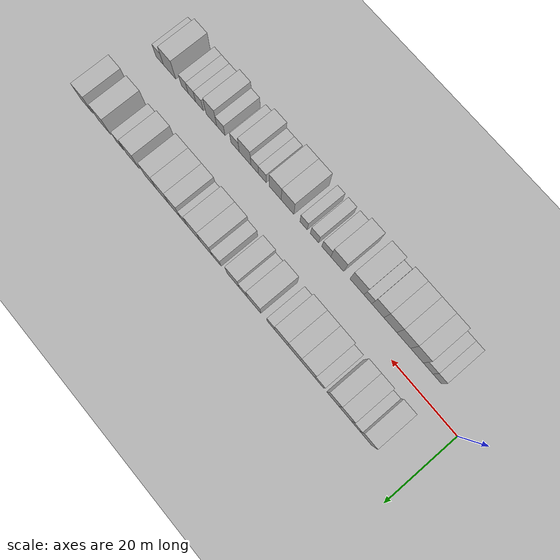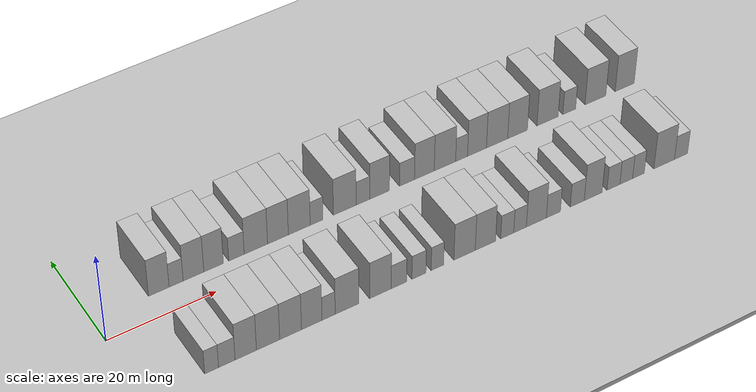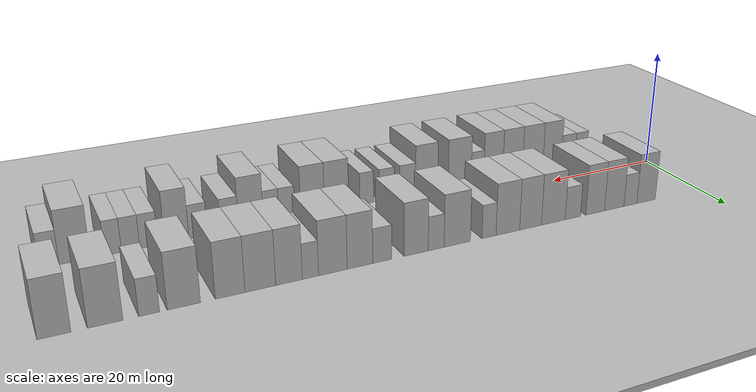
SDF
<sdf version="1.6">
 <world name="default">
  <include><name>ground_plane_1</name><uri>model://HANNAS_ground_plane</uri></include>
  <include>
   <name>ground_plane_2</name>
   <uri>model://HANNAS_ground_plane</uri>
   <pose>100 0 0  0 0 0</pose>
  </include>
  <model name="building_1">
   <static>1</static>
   <pose>11.8868 9.5000 0 0.000000 0.000000 1.570796</pose>
   <link name="link">
    <pose>0 0 4.50 0 0 0</pose>
    <collision name="collision"><geometry><box><size>10.0000 3.7736 9.0000</size></box></geometry></collision>
    <visual name="visual">
     <cast_shadows>0</cast_shadows>
     <geometry><box><size>10.0000 3.7736 9.0000</size></box></geometry>
     <material>
      <script>
       <uri>model://HANNAS_wall/materials/scripts</uri>
       <uri>model://HANNAS_wall/materials/textures</uri>
       <name>vrc/HANNAS_wall</name>
      </script>
     </material>
    </visual>
   </link>
  </model>
  <model name="building_2">
   <static>1</static>
   <pose>15.0620 9.5000 0 0.000000 0.000000 1.570796</pose>
   <link name="link">
    <pose>0 0 3.00 0 0 0</pose>
    <collision name="collision"><geometry><box><size>10.0000 2.5769 6.0000</size></box></geometry></collision>
    <visual name="visual">
     <cast_shadows>0</cast_shadows>
     <geometry><box><size>10.0000 2.5769 6.0000</size></box></geometry>
     <material>
      <script>
       <uri>model://HANNAS_wall/materials/scripts</uri>
       <uri>model://HANNAS_wall/materials/textures</uri>
       <name>vrc/HANNAS_wall</name>
      </script>
     </material>
    </visual>
   </link>
  </model>
  <model name="building_3">
   <static>1</static>
   <pose>18.2629 9.5000 0 0.000000 0.000000 1.570796</pose>
   <link name="link">
    <pose>0 0 4.50 0 0 0</pose>
    <collision name="collision"><geometry><box><size>10.0000 3.8249 9.0000</size></box></geometry></collision>
    <visual name="visual">
     <cast_shadows>0</cast_shadows>
     <geometry><box><size>10.0000 3.8249 9.0000</size></box></geometry>
     <material>
      <script>
       <uri>model://HANNAS_wall/materials/scripts</uri>
       <uri>model://HANNAS_wall/materials/textures</uri>
       <name>vrc/HANNAS_wall</name>
      </script>
     </material>
    </visual>
   </link>
  </model>
  <model name="building_4">
   <static>1</static>
   <pose>21.9910 9.5000 0 0.000000 0.000000 1.570796</pose>
   <link name="link">
    <pose>0 0 4.50 0 0 0</pose>
    <collision name="collision"><geometry><box><size>10.0000 3.6313 9.0000</size></box></geometry></collision>
    <visual name="visual">
     <cast_shadows>0</cast_shadows>
     <geometry><box><size>10.0000 3.6313 9.0000</size></box></geometry>
     <material>
      <script>
       <uri>model://HANNAS_wall/materials/scripts</uri>
       <uri>model://HANNAS_wall/materials/textures</uri>
       <name>vrc/HANNAS_wall</name>
      </script>
     </material>
    </visual>
   </link>
  </model>
  <model name="building_5">
   <static>1</static>
   <pose>26.2558 9.5000 0 0.000000 0.000000 1.570796</pose>
   <link name="link">
    <pose>0 0 3.00 0 0 0</pose>
    <collision name="collision"><geometry><box><size>10.0000 2.8984 6.0000</size></box></geometry></collision>
    <visual name="visual">
     <cast_shadows>0</cast_shadows>
     <geometry><box><size>10.0000 2.8984 6.0000</size></box></geometry>
     <material>
      <script>
       <uri>model://HANNAS_wall/materials/scripts</uri>
       <uri>model://HANNAS_wall/materials/textures</uri>
       <name>vrc/HANNAS_wall</name>
      </script>
     </material>
    </visual>
   </link>
  </model>
  <model name="building_6">
   <static>1</static>
   <pose>29.9096 9.5000 0 0.000000 0.000000 1.570796</pose>
   <link name="link">
    <pose>0 0 4.50 0 0 0</pose>
    <collision name="collision"><geometry><box><size>10.0000 4.4091 9.0000</size></box></geometry></collision>
    <visual name="visual">
     <cast_shadows>0</cast_shadows>
     <geometry><box><size>10.0000 4.4091 9.0000</size></box></geometry>
     <material>
      <script>
       <uri>model://HANNAS_wall/materials/scripts</uri>
       <uri>model://HANNAS_wall/materials/textures</uri>
       <name>vrc/HANNAS_wall</name>
      </script>
     </material>
    </visual>
   </link>
  </model>
  <model name="building_7">
   <static>1</static>
   <pose>34.0918 9.5000 0 0.000000 0.000000 1.570796</pose>
   <link name="link">
    <pose>0 0 4.50 0 0 0</pose>
    <collision name="collision"><geometry><box><size>10.0000 3.9553 9.0000</size></box></geometry></collision>
    <visual name="visual">
     <cast_shadows>0</cast_shadows>
     <geometry><box><size>10.0000 3.9553 9.0000</size></box></geometry>
     <material>
      <script>
       <uri>model://HANNAS_wall/materials/scripts</uri>
       <uri>model://HANNAS_wall/materials/textures</uri>
       <name>vrc/HANNAS_wall</name>
      </script>
     </material>
    </visual>
   </link>
  </model>
  <model name="building_8">
   <static>1</static>
   <pose>38.1682 9.5000 0 0.000000 0.000000 1.570796</pose>
   <link name="link">
    <pose>0 0 4.50 0 0 0</pose>
    <collision name="collision"><geometry><box><size>10.0000 4.1977 9.0000</size></box></geometry></collision>
    <visual name="visual">
     <cast_shadows>0</cast_shadows>
     <geometry><box><size>10.0000 4.1977 9.0000</size></box></geometry>
     <material>
      <script>
       <uri>model://HANNAS_wall/materials/scripts</uri>
       <uri>model://HANNAS_wall/materials/textures</uri>
       <name>vrc/HANNAS_wall</name>
      </script>
     </material>
    </visual>
   </link>
  </model>
  <model name="building_9">
   <static>1</static>
   <pose>41.4952 9.5000 0 0.000000 0.000000 1.570796</pose>
   <link name="link">
    <pose>0 0 3.00 0 0 0</pose>
    <collision name="collision"><geometry><box><size>10.0000 2.4562 6.0000</size></box></geometry></collision>
    <visual name="visual">
     <cast_shadows>0</cast_shadows>
     <geometry><box><size>10.0000 2.4562 6.0000</size></box></geometry>
     <material>
      <script>
       <uri>model://HANNAS_wall/materials/scripts</uri>
       <uri>model://HANNAS_wall/materials/textures</uri>
       <name>vrc/HANNAS_wall</name>
      </script>
     </material>
    </visual>
   </link>
  </model>
  <model name="building_10">
   <static>1</static>
   <pose>46.9488 9.5000 0 0.000000 0.000000 1.570796</pose>
   <link name="link">
    <pose>0 0 4.50 0 0 0</pose>
    <collision name="collision"><geometry><box><size>10.0000 4.4510 9.0000</size></box></geometry></collision>
    <visual name="visual">
     <cast_shadows>0</cast_shadows>
     <geometry><box><size>10.0000 4.4510 9.0000</size></box></geometry>
     <material>
      <script>
       <uri>model://HANNAS_wall/materials/scripts</uri>
       <uri>model://HANNAS_wall/materials/textures</uri>
       <name>vrc/HANNAS_wall</name>
      </script>
     </material>
    </visual>
   </link>
  </model>
  <model name="building_11">
   <static>1</static>
   <pose>50.4869 9.5000 0 0.000000 0.000000 1.570796</pose>
   <link name="link">
    <pose>0 0 3.00 0 0 0</pose>
    <collision name="collision"><geometry><box><size>10.0000 2.6252 6.0000</size></box></geometry></collision>
    <visual name="visual">
     <cast_shadows>0</cast_shadows>
     <geometry><box><size>10.0000 2.6252 6.0000</size></box></geometry>
     <material>
      <script>
       <uri>model://HANNAS_wall/materials/scripts</uri>
       <uri>model://HANNAS_wall/materials/textures</uri>
       <name>vrc/HANNAS_wall</name>
      </script>
     </material>
    </visual>
   </link>
  </model>
  <model name="building_12">
   <static>1</static>
   <pose>53.7622 9.5000 0 0.000000 0.000000 1.570796</pose>
   <link name="link">
    <pose>0 0 4.50 0 0 0</pose>
    <collision name="collision"><geometry><box><size>10.0000 3.9254 9.0000</size></box></geometry></collision>
    <visual name="visual">
     <cast_shadows>0</cast_shadows>
     <geometry><box><size>10.0000 3.9254 9.0000</size></box></geometry>
     <material>
      <script>
       <uri>model://HANNAS_wall/materials/scripts</uri>
       <uri>model://HANNAS_wall/materials/textures</uri>
       <name>vrc/HANNAS_wall</name>
      </script>
     </material>
    </visual>
   </link>
  </model>
  <model name="building_13">
   <static>1</static>
   <pose>59.2164 9.5000 0 0.000000 0.000000 1.570796</pose>
   <link name="link">
    <pose>0 0 3.00 0 0 0</pose>
    <collision name="collision"><geometry><box><size>10.0000 2.9829 6.0000</size></box></geometry></collision>
    <visual name="visual">
     <cast_shadows>0</cast_shadows>
     <geometry><box><size>10.0000 2.9829 6.0000</size></box></geometry>
     <material>
      <script>
       <uri>model://HANNAS_wall/materials/scripts</uri>
       <uri>model://HANNAS_wall/materials/textures</uri>
       <name>vrc/HANNAS_wall</name>
      </script>
     </material>
    </visual>
   </link>
  </model>
  <model name="building_14">
   <static>1</static>
   <pose>62.6915 9.5000 0 0.000000 0.000000 1.570796</pose>
   <link name="link">
    <pose>0 0 4.50 0 0 0</pose>
    <collision name="collision"><geometry><box><size>10.0000 3.9674 9.0000</size></box></geometry></collision>
    <visual name="visual">
     <cast_shadows>0</cast_shadows>
     <geometry><box><size>10.0000 3.9674 9.0000</size></box></geometry>
     <material>
      <script>
       <uri>model://HANNAS_wall/materials/scripts</uri>
       <uri>model://HANNAS_wall/materials/textures</uri>
       <name>vrc/HANNAS_wall</name>
      </script>
     </material>
    </visual>
   </link>
  </model>
  <model name="building_15">
   <static>1</static>
   <pose>66.8374 9.5000 0 0.000000 0.000000 1.570796</pose>
   <link name="link">
    <pose>0 0 4.50 0 0 0</pose>
    <collision name="collision"><geometry><box><size>10.0000 4.3243 9.0000</size></box></geometry></collision>
    <visual name="visual">
     <cast_shadows>0</cast_shadows>
     <geometry><box><size>10.0000 4.3243 9.0000</size></box></geometry>
     <material>
      <script>
       <uri>model://HANNAS_wall/materials/scripts</uri>
       <uri>model://HANNAS_wall/materials/textures</uri>
       <name>vrc/HANNAS_wall</name>
      </script>
     </material>
    </visual>
   </link>
  </model>
  <model name="building_16">
   <static>1</static>
   <pose>70.2006 9.5000 0 0.000000 0.000000 1.570796</pose>
   <link name="link">
    <pose>0 0 3.00 0 0 0</pose>
    <collision name="collision"><geometry><box><size>10.0000 2.4023 6.0000</size></box></geometry></collision>
    <visual name="visual">
     <cast_shadows>0</cast_shadows>
     <geometry><box><size>10.0000 2.4023 6.0000</size></box></geometry>
     <material>
      <script>
       <uri>model://HANNAS_wall/materials/scripts</uri>
       <uri>model://HANNAS_wall/materials/textures</uri>
       <name>vrc/HANNAS_wall</name>
      </script>
     </material>
    </visual>
   </link>
  </model>
  <model name="building_17">
   <static>1</static>
   <pose>73.3415 9.5000 0 0.000000 0.000000 1.570796</pose>
   <link name="link">
    <pose>0 0 4.50 0 0 0</pose>
    <collision name="collision"><geometry><box><size>10.0000 3.8795 9.0000</size></box></geometry></collision>
    <visual name="visual">
     <cast_shadows>0</cast_shadows>
     <geometry><box><size>10.0000 3.8795 9.0000</size></box></geometry>
     <material>
      <script>
       <uri>model://HANNAS_wall/materials/scripts</uri>
       <uri>model://HANNAS_wall/materials/textures</uri>
       <name>vrc/HANNAS_wall</name>
      </script>
     </material>
    </visual>
   </link>
  </model>
  <model name="building_18">
   <static>1</static>
   <pose>77.4658 9.5000 0 0.000000 0.000000 1.570796</pose>
   <link name="link">
    <pose>0 0 4.50 0 0 0</pose>
    <collision name="collision"><geometry><box><size>10.0000 4.3690 9.0000</size></box></geometry></collision>
    <visual name="visual">
     <cast_shadows>0</cast_shadows>
     <geometry><box><size>10.0000 4.3690 9.0000</size></box></geometry>
     <material>
      <script>
       <uri>model://HANNAS_wall/materials/scripts</uri>
       <uri>model://HANNAS_wall/materials/textures</uri>
       <name>vrc/HANNAS_wall</name>
      </script>
     </material>
    </visual>
   </link>
  </model>
  <model name="building_19">
   <static>1</static>
   <pose>81.7029 9.5000 0 0.000000 0.000000 1.570796</pose>
   <link name="link">
    <pose>0 0 4.50 0 0 0</pose>
    <collision name="collision"><geometry><box><size>10.0000 4.1053 9.0000</size></box></geometry></collision>
    <visual name="visual">
     <cast_shadows>0</cast_shadows>
     <geometry><box><size>10.0000 4.1053 9.0000</size></box></geometry>
     <material>
      <script>
       <uri>model://HANNAS_wall/materials/scripts</uri>
       <uri>model://HANNAS_wall/materials/textures</uri>
       <name>vrc/HANNAS_wall</name>
      </script>
     </material>
    </visual>
   </link>
  </model>
  <model name="building_20">
   <static>1</static>
   <pose>87.9693 9.5000 0 0.000000 0.000000 1.570796</pose>
   <link name="link">
    <pose>0 0 4.50 0 0 0</pose>
    <collision name="collision"><geometry><box><size>10.0000 4.4275 9.0000</size></box></geometry></collision>
    <visual name="visual">
     <cast_shadows>0</cast_shadows>
     <geometry><box><size>10.0000 4.4275 9.0000</size></box></geometry>
     <material>
      <script>
       <uri>model://HANNAS_wall/materials/scripts</uri>
       <uri>model://HANNAS_wall/materials/textures</uri>
       <name>vrc/HANNAS_wall</name>
      </script>
     </material>
    </visual>
   </link>
  </model>
  <model name="building_21">
   <static>1</static>
   <pose>92.5368 9.5000 0 0.000000 0.000000 1.570796</pose>
   <link name="link">
    <pose>0 0 3.00 0 0 0</pose>
    <collision name="collision"><geometry><box><size>10.0000 2.7074 6.0000</size></box></geometry></collision>
    <visual name="visual">
     <cast_shadows>0</cast_shadows>
     <geometry><box><size>10.0000 2.7074 6.0000</size></box></geometry>
     <material>
      <script>
       <uri>model://HANNAS_wall/materials/scripts</uri>
       <uri>model://HANNAS_wall/materials/textures</uri>
       <name>vrc/HANNAS_wall</name>
      </script>
     </material>
    </visual>
   </link>
  </model>
  <model name="building_22">
   <static>1</static>
   <pose>98.1123 9.5000 0 0.000000 0.000000 1.570796</pose>
   <link name="link">
    <pose>0 0 4.50 0 0 0</pose>
    <collision name="collision"><geometry><box><size>10.0000 4.4437 9.0000</size></box></geometry></collision>
    <visual name="visual">
     <cast_shadows>0</cast_shadows>
     <geometry><box><size>10.0000 4.4437 9.0000</size></box></geometry>
     <material>
      <script>
       <uri>model://HANNAS_wall/materials/scripts</uri>
       <uri>model://HANNAS_wall/materials/textures</uri>
       <name>vrc/HANNAS_wall</name>
      </script>
     </material>
    </visual>
   </link>
  </model>
  <model name="building_23">
   <static>1</static>
   <pose>104.3862 9.5000 0 0.000000 0.000000 1.570796</pose>
   <link name="link">
    <pose>0 0 4.50 0 0 0</pose>
    <collision name="collision"><geometry><box><size>10.0000 4.1040 9.0000</size></box></geometry></collision>
    <visual name="visual">
     <cast_shadows>0</cast_shadows>
     <geometry><box><size>10.0000 4.1040 9.0000</size></box></geometry>
     <material>
      <script>
       <uri>model://HANNAS_wall/materials/scripts</uri>
       <uri>model://HANNAS_wall/materials/textures</uri>
       <name>vrc/HANNAS_wall</name>
      </script>
     </material>
    </visual>
   </link>
  </model>
  <model name="building_48">
   <static>1</static>
   <pose>11.2452 -9.5000 0 0.000000 0.000000 1.570796</pose>
   <link name="link">
    <pose>0 0 3.00 0 0 0</pose>
    <collision name="collision"><geometry><box><size>10.0000 2.4903 6.0000</size></box></geometry></collision>
    <visual name="visual">
     <cast_shadows>0</cast_shadows>
     <geometry><box><size>10.0000 2.4903 6.0000</size></box></geometry>
     <material>
      <script>
       <uri>model://HANNAS_wall/materials/scripts</uri>
       <uri>model://HANNAS_wall/materials/textures</uri>
       <name>vrc/HANNAS_wall</name>
      </script>
     </material>
    </visual>
   </link>
  </model>
  <model name="building_49">
   <static>1</static>
   <pose>13.9684 -9.5000 0 0.000000 0.000000 1.570796</pose>
   <link name="link">
    <pose>0 0 3.00 0 0 0</pose>
    <collision name="collision"><geometry><box><size>10.0000 2.9562 6.0000</size></box></geometry></collision>
    <visual name="visual">
     <cast_shadows>0</cast_shadows>
     <geometry><box><size>10.0000 2.9562 6.0000</size></box></geometry>
     <material>
      <script>
       <uri>model://HANNAS_wall/materials/scripts</uri>
       <uri>model://HANNAS_wall/materials/textures</uri>
       <name>vrc/HANNAS_wall</name>
      </script>
     </material>
    </visual>
   </link>
  </model>
  <model name="building_50">
   <static>1</static>
   <pose>17.3825 -9.5000 0 0.000000 0.000000 1.570796</pose>
   <link name="link">
    <pose>0 0 4.50 0 0 0</pose>
    <collision name="collision"><geometry><box><size>10.0000 3.8720 9.0000</size></box></geometry></collision>
    <visual name="visual">
     <cast_shadows>0</cast_shadows>
     <geometry><box><size>10.0000 3.8720 9.0000</size></box></geometry>
     <material>
      <script>
       <uri>model://HANNAS_wall/materials/scripts</uri>
       <uri>model://HANNAS_wall/materials/textures</uri>
       <name>vrc/HANNAS_wall</name>
      </script>
     </material>
    </visual>
   </link>
  </model>
  <model name="building_51">
   <static>1</static>
   <pose>21.4363 -9.5000 0 0.000000 0.000000 1.570796</pose>
   <link name="link">
    <pose>0 0 4.50 0 0 0</pose>
    <collision name="collision"><geometry><box><size>10.0000 4.2356 9.0000</size></box></geometry></collision>
    <visual name="visual">
     <cast_shadows>0</cast_shadows>
     <geometry><box><size>10.0000 4.2356 9.0000</size></box></geometry>
     <material>
      <script>
       <uri>model://HANNAS_wall/materials/scripts</uri>
       <uri>model://HANNAS_wall/materials/textures</uri>
       <name>vrc/HANNAS_wall</name>
      </script>
     </material>
    </visual>
   </link>
  </model>
  <model name="building_52">
   <static>1</static>
   <pose>25.5571 -9.5000 0 0.000000 0.000000 1.570796</pose>
   <link name="link">
    <pose>0 0 4.50 0 0 0</pose>
    <collision name="collision"><geometry><box><size>10.0000 4.0060 9.0000</size></box></geometry></collision>
    <visual name="visual">
     <cast_shadows>0</cast_shadows>
     <geometry><box><size>10.0000 4.0060 9.0000</size></box></geometry>
     <material>
      <script>
       <uri>model://HANNAS_wall/materials/scripts</uri>
       <uri>model://HANNAS_wall/materials/textures</uri>
       <name>vrc/HANNAS_wall</name>
      </script>
     </material>
    </visual>
   </link>
  </model>
  <model name="building_53">
   <static>1</static>
   <pose>29.4530 -9.5000 0 0.000000 0.000000 1.570796</pose>
   <link name="link">
    <pose>0 0 4.50 0 0 0</pose>
    <collision name="collision"><geometry><box><size>10.0000 3.7857 9.0000</size></box></geometry></collision>
    <visual name="visual">
     <cast_shadows>0</cast_shadows>
     <geometry><box><size>10.0000 3.7857 9.0000</size></box></geometry>
     <material>
      <script>
       <uri>model://HANNAS_wall/materials/scripts</uri>
       <uri>model://HANNAS_wall/materials/textures</uri>
       <name>vrc/HANNAS_wall</name>
      </script>
     </material>
    </visual>
   </link>
  </model>
  <model name="building_54">
   <static>1</static>
   <pose>32.5787 -9.5000 0 0.000000 0.000000 1.570796</pose>
   <link name="link">
    <pose>0 0 3.00 0 0 0</pose>
    <collision name="collision"><geometry><box><size>10.0000 2.4656 6.0000</size></box></geometry></collision>
    <visual name="visual">
     <cast_shadows>0</cast_shadows>
     <geometry><box><size>10.0000 2.4656 6.0000</size></box></geometry>
     <material>
      <script>
       <uri>model://HANNAS_wall/materials/scripts</uri>
       <uri>model://HANNAS_wall/materials/textures</uri>
       <name>vrc/HANNAS_wall</name>
      </script>
     </material>
    </visual>
   </link>
  </model>
  <model name="building_55">
   <static>1</static>
   <pose>36.0346 -9.5000 0 0.000000 0.000000 1.570796</pose>
   <link name="link">
    <pose>0 0 4.50 0 0 0</pose>
    <collision name="collision"><geometry><box><size>10.0000 4.4462 9.0000</size></box></geometry></collision>
    <visual name="visual">
     <cast_shadows>0</cast_shadows>
     <geometry><box><size>10.0000 4.4462 9.0000</size></box></geometry>
     <material>
      <script>
       <uri>model://HANNAS_wall/materials/scripts</uri>
       <uri>model://HANNAS_wall/materials/textures</uri>
       <name>vrc/HANNAS_wall</name>
      </script>
     </material>
    </visual>
   </link>
  </model>
  <model name="building_56">
   <static>1</static>
   <pose>42.3177 -9.5000 0 0.000000 0.000000 1.570796</pose>
   <link name="link">
    <pose>0 0 4.50 0 0 0</pose>
    <collision name="collision"><geometry><box><size>10.0000 4.1200 9.0000</size></box></geometry></collision>
    <visual name="visual">
     <cast_shadows>0</cast_shadows>
     <geometry><box><size>10.0000 4.1200 9.0000</size></box></geometry>
     <material>
      <script>
       <uri>model://HANNAS_wall/materials/scripts</uri>
       <uri>model://HANNAS_wall/materials/textures</uri>
       <name>vrc/HANNAS_wall</name>
      </script>
     </material>
    </visual>
   </link>
  </model>
  <model name="building_57">
   <static>1</static>
   <pose>45.8467 -9.5000 0 0.000000 0.000000 1.570796</pose>
   <link name="link">
    <pose>0 0 3.00 0 0 0</pose>
    <collision name="collision"><geometry><box><size>10.0000 2.9378 6.0000</size></box></geometry></collision>
    <visual name="visual">
     <cast_shadows>0</cast_shadows>
     <geometry><box><size>10.0000 2.9378 6.0000</size></box></geometry>
     <material>
      <script>
       <uri>model://HANNAS_wall/materials/scripts</uri>
       <uri>model://HANNAS_wall/materials/textures</uri>
       <name>vrc/HANNAS_wall</name>
      </script>
     </material>
    </visual>
   </link>
  </model>
  <model name="building_58">
   <static>1</static>
   <pose>49.6686 -9.5000 0 0.000000 0.000000 1.570796</pose>
   <link name="link">
    <pose>0 0 3.00 0 0 0</pose>
    <collision name="collision"><geometry><box><size>10.0000 2.7061 6.0000</size></box></geometry></collision>
    <visual name="visual">
     <cast_shadows>0</cast_shadows>
     <geometry><box><size>10.0000 2.7061 6.0000</size></box></geometry>
     <material>
      <script>
       <uri>model://HANNAS_wall/materials/scripts</uri>
       <uri>model://HANNAS_wall/materials/textures</uri>
       <name>vrc/HANNAS_wall</name>
      </script>
     </material>
    </visual>
   </link>
  </model>
  <model name="building_59">
   <static>1</static>
   <pose>53.2299 -9.5000 0 0.000000 0.000000 1.570796</pose>
   <link name="link">
    <pose>0 0 3.00 0 0 0</pose>
    <collision name="collision"><geometry><box><size>10.0000 2.4163 6.0000</size></box></geometry></collision>
    <visual name="visual">
     <cast_shadows>0</cast_shadows>
     <geometry><box><size>10.0000 2.4163 6.0000</size></box></geometry>
     <material>
      <script>
       <uri>model://HANNAS_wall/materials/scripts</uri>
       <uri>model://HANNAS_wall/materials/textures</uri>
       <name>vrc/HANNAS_wall</name>
      </script>
     </material>
    </visual>
   </link>
  </model>
  <model name="building_60">
   <static>1</static>
   <pose>58.5253 -9.5000 0 0.000000 0.000000 1.570796</pose>
   <link name="link">
    <pose>0 0 4.50 0 0 0</pose>
    <collision name="collision"><geometry><box><size>10.0000 4.1747 9.0000</size></box></geometry></collision>
    <visual name="visual">
     <cast_shadows>0</cast_shadows>
     <geometry><box><size>10.0000 4.1747 9.0000</size></box></geometry>
     <material>
      <script>
       <uri>model://HANNAS_wall/materials/scripts</uri>
       <uri>model://HANNAS_wall/materials/textures</uri>
       <name>vrc/HANNAS_wall</name>
      </script>
     </material>
    </visual>
   </link>
  </model>
  <model name="building_61">
   <static>1</static>
   <pose>62.6160 -9.5000 0 0.000000 0.000000 1.570796</pose>
   <link name="link">
    <pose>0 0 4.50 0 0 0</pose>
    <collision name="collision"><geometry><box><size>10.0000 4.0067 9.0000</size></box></geometry></collision>
    <visual name="visual">
     <cast_shadows>0</cast_shadows>
     <geometry><box><size>10.0000 4.0067 9.0000</size></box></geometry>
     <material>
      <script>
       <uri>model://HANNAS_wall/materials/scripts</uri>
       <uri>model://HANNAS_wall/materials/textures</uri>
       <name>vrc/HANNAS_wall</name>
      </script>
     </material>
    </visual>
   </link>
  </model>
  <model name="building_62">
   <static>1</static>
   <pose>66.9237 -9.5000 0 0.000000 0.000000 1.570796</pose>
   <link name="link">
    <pose>0 0 3.00 0 0 0</pose>
    <collision name="collision"><geometry><box><size>10.0000 2.6087 6.0000</size></box></geometry></collision>
    <visual name="visual">
     <cast_shadows>0</cast_shadows>
     <geometry><box><size>10.0000 2.6087 6.0000</size></box></geometry>
     <material>
      <script>
       <uri>model://HANNAS_wall/materials/scripts</uri>
       <uri>model://HANNAS_wall/materials/textures</uri>
       <name>vrc/HANNAS_wall</name>
      </script>
     </material>
    </visual>
   </link>
  </model>
  <model name="building_63">
   <static>1</static>
   <pose>69.4891 -9.5000 0 0.000000 0.000000 1.570796</pose>
   <link name="link">
    <pose>0 0 3.00 0 0 0</pose>
    <collision name="collision"><geometry><box><size>10.0000 2.5221 6.0000</size></box></geometry></collision>
    <visual name="visual">
     <cast_shadows>0</cast_shadows>
     <geometry><box><size>10.0000 2.5221 6.0000</size></box></geometry>
     <material>
      <script>
       <uri>model://HANNAS_wall/materials/scripts</uri>
       <uri>model://HANNAS_wall/materials/textures</uri>
       <name>vrc/HANNAS_wall</name>
      </script>
     </material>
    </visual>
   </link>
  </model>
  <model name="building_64">
   <static>1</static>
   <pose>72.7527 -9.5000 0 0.000000 0.000000 1.570796</pose>
   <link name="link">
    <pose>0 0 4.50 0 0 0</pose>
    <collision name="collision"><geometry><box><size>10.0000 4.0052 9.0000</size></box></geometry></collision>
    <visual name="visual">
     <cast_shadows>0</cast_shadows>
     <geometry><box><size>10.0000 4.0052 9.0000</size></box></geometry>
     <material>
      <script>
       <uri>model://HANNAS_wall/materials/scripts</uri>
       <uri>model://HANNAS_wall/materials/textures</uri>
       <name>vrc/HANNAS_wall</name>
      </script>
     </material>
    </visual>
   </link>
  </model>
  <model name="building_65">
   <static>1</static>
   <pose>76.1788 -9.5000 0 0.000000 0.000000 1.570796</pose>
   <link name="link">
    <pose>0 0 3.00 0 0 0</pose>
    <collision name="collision"><geometry><box><size>10.0000 2.8469 6.0000</size></box></geometry></collision>
    <visual name="visual">
     <cast_shadows>0</cast_shadows>
     <geometry><box><size>10.0000 2.8469 6.0000</size></box></geometry>
     <material>
      <script>
       <uri>model://HANNAS_wall/materials/scripts</uri>
       <uri>model://HANNAS_wall/materials/textures</uri>
       <name>vrc/HANNAS_wall</name>
      </script>
     </material>
    </visual>
   </link>
  </model>
  <model name="building_66">
   <static>1</static>
   <pose>81.0312 -9.5000 0 0.000000 0.000000 1.570796</pose>
   <link name="link">
    <pose>0 0 3.00 0 0 0</pose>
    <collision name="collision"><geometry><box><size>10.0000 2.8577 6.0000</size></box></geometry></collision>
    <visual name="visual">
     <cast_shadows>0</cast_shadows>
     <geometry><box><size>10.0000 2.8577 6.0000</size></box></geometry>
     <material>
      <script>
       <uri>model://HANNAS_wall/materials/scripts</uri>
       <uri>model://HANNAS_wall/materials/textures</uri>
       <name>vrc/HANNAS_wall</name>
      </script>
     </material>
    </visual>
   </link>
  </model>
  <model name="building_67">
   <static>1</static>
   <pose>84.2872 -9.5000 0 0.000000 0.000000 1.570796</pose>
   <link name="link">
    <pose>0 0 4.50 0 0 0</pose>
    <collision name="collision"><geometry><box><size>10.0000 3.6544 9.0000</size></box></geometry></collision>
    <visual name="visual">
     <cast_shadows>0</cast_shadows>
     <geometry><box><size>10.0000 3.6544 9.0000</size></box></geometry>
     <material>
      <script>
       <uri>model://HANNAS_wall/materials/scripts</uri>
       <uri>model://HANNAS_wall/materials/textures</uri>
       <name>vrc/HANNAS_wall</name>
      </script>
     </material>
    </visual>
   </link>
  </model>
  <model name="building_68">
   <static>1</static>
   <pose>88.4512 -9.5000 0 0.000000 0.000000 1.570796</pose>
   <link name="link">
    <pose>0 0 3.00 0 0 0</pose>
    <collision name="collision"><geometry><box><size>10.0000 2.6736 6.0000</size></box></geometry></collision>
    <visual name="visual">
     <cast_shadows>0</cast_shadows>
     <geometry><box><size>10.0000 2.6736 6.0000</size></box></geometry>
     <material>
      <script>
       <uri>model://HANNAS_wall/materials/scripts</uri>
       <uri>model://HANNAS_wall/materials/textures</uri>
       <name>vrc/HANNAS_wall</name>
      </script>
     </material>
    </visual>
   </link>
  </model>
  <model name="building_69">
   <static>1</static>
   <pose>91.1106 -9.5000 0 0.000000 0.000000 1.570796</pose>
   <link name="link">
    <pose>0 0 3.00 0 0 0</pose>
    <collision name="collision"><geometry><box><size>10.0000 2.6452 6.0000</size></box></geometry></collision>
    <visual name="visual">
     <cast_shadows>0</cast_shadows>
     <geometry><box><size>10.0000 2.6452 6.0000</size></box></geometry>
     <material>
      <script>
       <uri>model://HANNAS_wall/materials/scripts</uri>
       <uri>model://HANNAS_wall/materials/textures</uri>
       <name>vrc/HANNAS_wall</name>
      </script>
     </material>
    </visual>
   </link>
  </model>
  <model name="building_70">
   <static>1</static>
   <pose>93.6468 -9.5000 0 0.000000 0.000000 1.570796</pose>
   <link name="link">
    <pose>0 0 3.00 0 0 0</pose>
    <collision name="collision"><geometry><box><size>10.0000 2.4272 6.0000</size></box></geometry></collision>
    <visual name="visual">
     <cast_shadows>0</cast_shadows>
     <geometry><box><size>10.0000 2.4272 6.0000</size></box></geometry>
     <material>
      <script>
       <uri>model://HANNAS_wall/materials/scripts</uri>
       <uri>model://HANNAS_wall/materials/textures</uri>
       <name>vrc/HANNAS_wall</name>
      </script>
     </material>
    </visual>
   </link>
  </model>
  <model name="building_71">
   <static>1</static>
   <pose>99.0373 -9.5000 0 0.000000 0.000000 1.570796</pose>
   <link name="link">
    <pose>0 0 4.50 0 0 0</pose>
    <collision name="collision"><geometry><box><size>10.0000 4.3539 9.0000</size></box></geometry></collision>
    <visual name="visual">
     <cast_shadows>0</cast_shadows>
     <geometry><box><size>10.0000 4.3539 9.0000</size></box></geometry>
     <material>
      <script>
       <uri>model://HANNAS_wall/materials/scripts</uri>
       <uri>model://HANNAS_wall/materials/textures</uri>
       <name>vrc/HANNAS_wall</name>
      </script>
     </material>
    </visual>
   </link>
  </model>
  <model name="building_72">
   <static>1</static>
   <pose>102.5977 -9.5000 0 0.000000 0.000000 1.570796</pose>
   <link name="link">
    <pose>0 0 3.00 0 0 0</pose>
    <collision name="collision"><geometry><box><size>10.0000 2.7668 6.0000</size></box></geometry></collision>
    <visual name="visual">
     <cast_shadows>0</cast_shadows>
     <geometry><box><size>10.0000 2.7668 6.0000</size></box></geometry>
     <material>
      <script>
       <uri>model://HANNAS_wall/materials/scripts</uri>
       <uri>model://HANNAS_wall/materials/textures</uri>
       <name>vrc/HANNAS_wall</name>
      </script>
     </material>
    </visual>
   </link>
  </model>
 </world>
</sdf>
